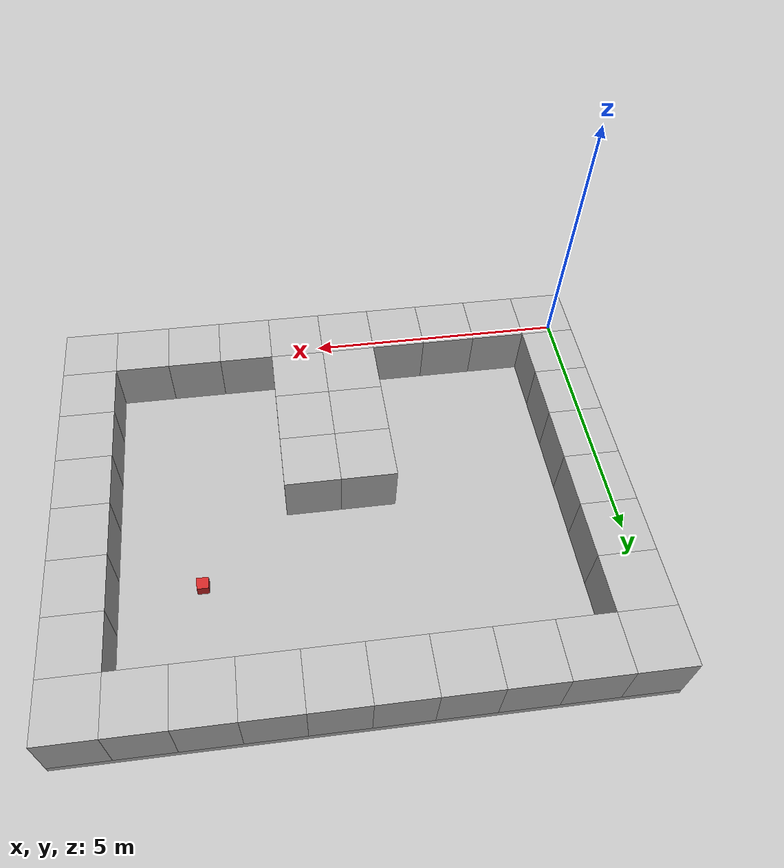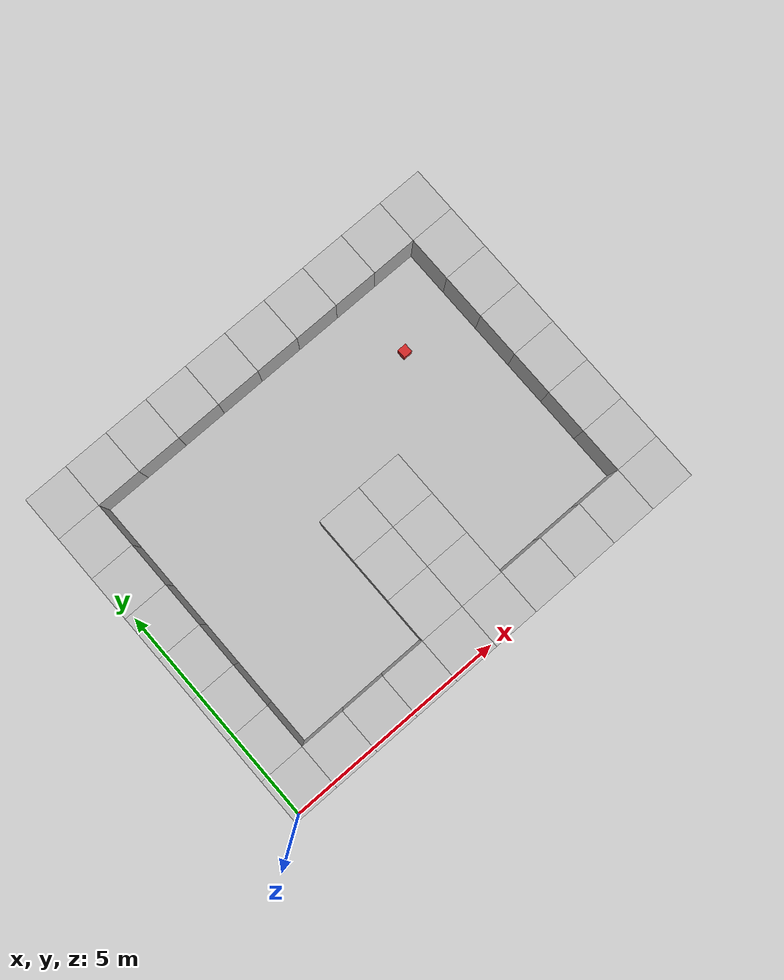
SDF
<sdf version="1.4">
 <world name="default">
  <light name="sun" type="directional">
   <diffuse>0.8 0.8 0.8 1</diffuse>
   <specular>0.1 0.1 0.1 1</specular>
   <attenuation>
    <range>1000</range>
    <constant>0.9</constant>
    <linear>0.01</linear>
    <quadratic>0.001</quadratic>
   </attenuation>
   <direction>-0.5 0.5 -1</direction>
  </light>
  <model name="floor">
   <pose>5.0 4.0 -0.0625 0 0 0</pose>
   <static>true</static>
   <link name="link">
    <collision name="collision"><geometry><box><size>10.0 8.0 0.125</size></box></geometry></collision>
    <visual name="visual"><geometry><box><size>10.0 8.0 0.125</size></box></geometry></visual>
   </link>
  </model>
  <model name="box_0_0">
   <pose>0.5 0.5 0.5 0 0 0</pose>
   <static>true</static>
   <link name="link">
    <collision name="collision"><geometry><box><size>1.0 1.0 1.0</size></box></geometry></collision>
    <visual name="visual"><geometry><box><size>1.0 1.0 1.0</size></box></geometry></visual>
   </link>
  </model>
  <model name="box_0_1">
   <pose>0.5 1.5 0.5 0 0 0</pose>
   <static>true</static>
   <link name="link">
    <collision name="collision"><geometry><box><size>1.0 1.0 1.0</size></box></geometry></collision>
    <visual name="visual"><geometry><box><size>1.0 1.0 1.0</size></box></geometry></visual>
   </link>
  </model>
  <model name="box_0_2">
   <pose>0.5 2.5 0.5 0 0 0</pose>
   <static>true</static>
   <link name="link">
    <collision name="collision"><geometry><box><size>1.0 1.0 1.0</size></box></geometry></collision>
    <visual name="visual"><geometry><box><size>1.0 1.0 1.0</size></box></geometry></visual>
   </link>
  </model>
  <model name="box_0_3">
   <pose>0.5 3.5 0.5 0 0 0</pose>
   <static>true</static>
   <link name="link">
    <collision name="collision"><geometry><box><size>1.0 1.0 1.0</size></box></geometry></collision>
    <visual name="visual"><geometry><box><size>1.0 1.0 1.0</size></box></geometry></visual>
   </link>
  </model>
  <model name="box_0_4">
   <pose>0.5 4.5 0.5 0 0 0</pose>
   <static>true</static>
   <link name="link">
    <collision name="collision"><geometry><box><size>1.0 1.0 1.0</size></box></geometry></collision>
    <visual name="visual"><geometry><box><size>1.0 1.0 1.0</size></box></geometry></visual>
   </link>
  </model>
  <model name="box_0_5">
   <pose>0.5 5.5 0.5 0 0 0</pose>
   <static>true</static>
   <link name="link">
    <collision name="collision"><geometry><box><size>1.0 1.0 1.0</size></box></geometry></collision>
    <visual name="visual"><geometry><box><size>1.0 1.0 1.0</size></box></geometry></visual>
   </link>
  </model>
  <model name="box_0_6">
   <pose>0.5 6.5 0.5 0 0 0</pose>
   <static>true</static>
   <link name="link">
    <collision name="collision"><geometry><box><size>1.0 1.0 1.0</size></box></geometry></collision>
    <visual name="visual"><geometry><box><size>1.0 1.0 1.0</size></box></geometry></visual>
   </link>
  </model>
  <model name="box_0_7">
   <pose>0.5 7.5 0.5 0 0 0</pose>
   <static>true</static>
   <link name="link">
    <collision name="collision"><geometry><box><size>1.0 1.0 1.0</size></box></geometry></collision>
    <visual name="visual"><geometry><box><size>1.0 1.0 1.0</size></box></geometry></visual>
   </link>
  </model>
  <model name="box_1_0">
   <pose>1.5 0.5 0.5 0 0 0</pose>
   <static>true</static>
   <link name="link">
    <collision name="collision"><geometry><box><size>1.0 1.0 1.0</size></box></geometry></collision>
    <visual name="visual"><geometry><box><size>1.0 1.0 1.0</size></box></geometry></visual>
   </link>
  </model>
  <model name="box_1_7">
   <pose>1.5 7.5 0.5 0 0 0</pose>
   <static>true</static>
   <link name="link">
    <collision name="collision"><geometry><box><size>1.0 1.0 1.0</size></box></geometry></collision>
    <visual name="visual"><geometry><box><size>1.0 1.0 1.0</size></box></geometry></visual>
   </link>
  </model>
  <model name="box_2_0">
   <pose>2.5 0.5 0.5 0 0 0</pose>
   <static>true</static>
   <link name="link">
    <collision name="collision"><geometry><box><size>1.0 1.0 1.0</size></box></geometry></collision>
    <visual name="visual"><geometry><box><size>1.0 1.0 1.0</size></box></geometry></visual>
   </link>
  </model>
  <model name="box_2_7">
   <pose>2.5 7.5 0.5 0 0 0</pose>
   <static>true</static>
   <link name="link">
    <collision name="collision"><geometry><box><size>1.0 1.0 1.0</size></box></geometry></collision>
    <visual name="visual"><geometry><box><size>1.0 1.0 1.0</size></box></geometry></visual>
   </link>
  </model>
  <model name="box_3_0">
   <pose>3.5 0.5 0.5 0 0 0</pose>
   <static>true</static>
   <link name="link">
    <collision name="collision"><geometry><box><size>1.0 1.0 1.0</size></box></geometry></collision>
    <visual name="visual"><geometry><box><size>1.0 1.0 1.0</size></box></geometry></visual>
   </link>
  </model>
  <model name="box_3_7">
   <pose>3.5 7.5 0.5 0 0 0</pose>
   <static>true</static>
   <link name="link">
    <collision name="collision"><geometry><box><size>1.0 1.0 1.0</size></box></geometry></collision>
    <visual name="visual"><geometry><box><size>1.0 1.0 1.0</size></box></geometry></visual>
   </link>
  </model>
  <model name="box_4_0">
   <pose>4.5 0.5 0.5 0 0 0</pose>
   <static>true</static>
   <link name="link">
    <collision name="collision"><geometry><box><size>1.0 1.0 1.0</size></box></geometry></collision>
    <visual name="visual"><geometry><box><size>1.0 1.0 1.0</size></box></geometry></visual>
   </link>
  </model>
  <model name="box_4_1">
   <pose>4.5 1.5 0.5 0 0 0</pose>
   <static>true</static>
   <link name="link">
    <collision name="collision"><geometry><box><size>1.0 1.0 1.0</size></box></geometry></collision>
    <visual name="visual"><geometry><box><size>1.0 1.0 1.0</size></box></geometry></visual>
   </link>
  </model>
  <model name="box_4_2">
   <pose>4.5 2.5 0.5 0 0 0</pose>
   <static>true</static>
   <link name="link">
    <collision name="collision"><geometry><box><size>1.0 1.0 1.0</size></box></geometry></collision>
    <visual name="visual"><geometry><box><size>1.0 1.0 1.0</size></box></geometry></visual>
   </link>
  </model>
  <model name="box_4_3">
   <pose>4.5 3.5 0.5 0 0 0</pose>
   <static>true</static>
   <link name="link">
    <collision name="collision"><geometry><box><size>1.0 1.0 1.0</size></box></geometry></collision>
    <visual name="visual"><geometry><box><size>1.0 1.0 1.0</size></box></geometry></visual>
   </link>
  </model>
  <model name="box_4_7">
   <pose>4.5 7.5 0.5 0 0 0</pose>
   <static>true</static>
   <link name="link">
    <collision name="collision"><geometry><box><size>1.0 1.0 1.0</size></box></geometry></collision>
    <visual name="visual"><geometry><box><size>1.0 1.0 1.0</size></box></geometry></visual>
   </link>
  </model>
  <model name="box_5_0">
   <pose>5.5 0.5 0.5 0 0 0</pose>
   <static>true</static>
   <link name="link">
    <collision name="collision"><geometry><box><size>1.0 1.0 1.0</size></box></geometry></collision>
    <visual name="visual"><geometry><box><size>1.0 1.0 1.0</size></box></geometry></visual>
   </link>
  </model>
  <model name="box_5_1">
   <pose>5.5 1.5 0.5 0 0 0</pose>
   <static>true</static>
   <link name="link">
    <collision name="collision"><geometry><box><size>1.0 1.0 1.0</size></box></geometry></collision>
    <visual name="visual"><geometry><box><size>1.0 1.0 1.0</size></box></geometry></visual>
   </link>
  </model>
  <model name="box_5_2">
   <pose>5.5 2.5 0.5 0 0 0</pose>
   <static>true</static>
   <link name="link">
    <collision name="collision"><geometry><box><size>1.0 1.0 1.0</size></box></geometry></collision>
    <visual name="visual"><geometry><box><size>1.0 1.0 1.0</size></box></geometry></visual>
   </link>
  </model>
  <model name="box_5_3">
   <pose>5.5 3.5 0.5 0 0 0</pose>
   <static>true</static>
   <link name="link">
    <collision name="collision"><geometry><box><size>1.0 1.0 1.0</size></box></geometry></collision>
    <visual name="visual"><geometry><box><size>1.0 1.0 1.0</size></box></geometry></visual>
   </link>
  </model>
  <model name="box_5_7">
   <pose>5.5 7.5 0.5 0 0 0</pose>
   <static>true</static>
   <link name="link">
    <collision name="collision"><geometry><box><size>1.0 1.0 1.0</size></box></geometry></collision>
    <visual name="visual"><geometry><box><size>1.0 1.0 1.0</size></box></geometry></visual>
   </link>
  </model>
  <model name="box_6_0">
   <pose>6.5 0.5 0.5 0 0 0</pose>
   <static>true</static>
   <link name="link">
    <collision name="collision"><geometry><box><size>1.0 1.0 1.0</size></box></geometry></collision>
    <visual name="visual"><geometry><box><size>1.0 1.0 1.0</size></box></geometry></visual>
   </link>
  </model>
  <model name="box_6_7">
   <pose>6.5 7.5 0.5 0 0 0</pose>
   <static>true</static>
   <link name="link">
    <collision name="collision"><geometry><box><size>1.0 1.0 1.0</size></box></geometry></collision>
    <visual name="visual"><geometry><box><size>1.0 1.0 1.0</size></box></geometry></visual>
   </link>
  </model>
  <model name="box_7_0">
   <pose>7.5 0.5 0.5 0 0 0</pose>
   <static>true</static>
   <link name="link">
    <collision name="collision"><geometry><box><size>1.0 1.0 1.0</size></box></geometry></collision>
    <visual name="visual"><geometry><box><size>1.0 1.0 1.0</size></box></geometry></visual>
   </link>
  </model>
  <model name="box_7_7">
   <pose>7.5 7.5 0.5 0 0 0</pose>
   <static>true</static>
   <link name="link">
    <collision name="collision"><geometry><box><size>1.0 1.0 1.0</size></box></geometry></collision>
    <visual name="visual"><geometry><box><size>1.0 1.0 1.0</size></box></geometry></visual>
   </link>
  </model>
  <model name="box_8_0">
   <pose>8.5 0.5 0.5 0 0 0</pose>
   <static>true</static>
   <link name="link">
    <collision name="collision"><geometry><box><size>1.0 1.0 1.0</size></box></geometry></collision>
    <visual name="visual"><geometry><box><size>1.0 1.0 1.0</size></box></geometry></visual>
   </link>
  </model>
  <model name="box_8_7">
   <pose>8.5 7.5 0.5 0 0 0</pose>
   <static>true</static>
   <link name="link">
    <collision name="collision"><geometry><box><size>1.0 1.0 1.0</size></box></geometry></collision>
    <visual name="visual"><geometry><box><size>1.0 1.0 1.0</size></box></geometry></visual>
   </link>
  </model>
  <model name="box_9_0">
   <pose>9.5 0.5 0.5 0 0 0</pose>
   <static>true</static>
   <link name="link">
    <collision name="collision"><geometry><box><size>1.0 1.0 1.0</size></box></geometry></collision>
    <visual name="visual"><geometry><box><size>1.0 1.0 1.0</size></box></geometry></visual>
   </link>
  </model>
  <model name="box_9_1">
   <pose>9.5 1.5 0.5 0 0 0</pose>
   <static>true</static>
   <link name="link">
    <collision name="collision"><geometry><box><size>1.0 1.0 1.0</size></box></geometry></collision>
    <visual name="visual"><geometry><box><size>1.0 1.0 1.0</size></box></geometry></visual>
   </link>
  </model>
  <model name="box_9_2">
   <pose>9.5 2.5 0.5 0 0 0</pose>
   <static>true</static>
   <link name="link">
    <collision name="collision"><geometry><box><size>1.0 1.0 1.0</size></box></geometry></collision>
    <visual name="visual"><geometry><box><size>1.0 1.0 1.0</size></box></geometry></visual>
   </link>
  </model>
  <model name="box_9_3">
   <pose>9.5 3.5 0.5 0 0 0</pose>
   <static>true</static>
   <link name="link">
    <collision name="collision"><geometry><box><size>1.0 1.0 1.0</size></box></geometry></collision>
    <visual name="visual"><geometry><box><size>1.0 1.0 1.0</size></box></geometry></visual>
   </link>
  </model>
  <model name="box_9_4">
   <pose>9.5 4.5 0.5 0 0 0</pose>
   <static>true</static>
   <link name="link">
    <collision name="collision"><geometry><box><size>1.0 1.0 1.0</size></box></geometry></collision>
    <visual name="visual"><geometry><box><size>1.0 1.0 1.0</size></box></geometry></visual>
   </link>
  </model>
  <model name="box_9_5">
   <pose>9.5 5.5 0.5 0 0 0</pose>
   <static>true</static>
   <link name="link">
    <collision name="collision"><geometry><box><size>1.0 1.0 1.0</size></box></geometry></collision>
    <visual name="visual"><geometry><box><size>1.0 1.0 1.0</size></box></geometry></visual>
   </link>
  </model>
  <model name="box_9_6">
   <pose>9.5 6.5 0.5 0 0 0</pose>
   <static>true</static>
   <link name="link">
    <collision name="collision"><geometry><box><size>1.0 1.0 1.0</size></box></geometry></collision>
    <visual name="visual"><geometry><box><size>1.0 1.0 1.0</size></box></geometry></visual>
   </link>
  </model>
  <model name="box_9_7">
   <pose>9.5 7.5 0.5 0 0 0</pose>
   <static>true</static>
   <link name="link">
    <collision name="collision"><geometry><box><size>1.0 1.0 1.0</size></box></geometry></collision>
    <visual name="visual"><geometry><box><size>1.0 1.0 1.0</size></box></geometry></visual>
   </link>
  </model>
  <model name="box_goal">
   <pose>7.5 5.5 0.5 0 0 0</pose>
   <static>true</static>
   <link name="link">
    <collision name="collision"><geometry><box><size>0.2 0.2 0.2</size></box></geometry></collision>
    <visual name="visual">
     <geometry><box><size>0.2 0.2 0.2</size></box></geometry>
     <material>
      <script>
       <uri>file://media/materials/scripts/gazebo.material</uri>
       <name>Gazebo/Red</name>
       <static>true</static>
      </script>
     </material>
    </visual>
   </link>
  </model>
 </world>
</sdf>
